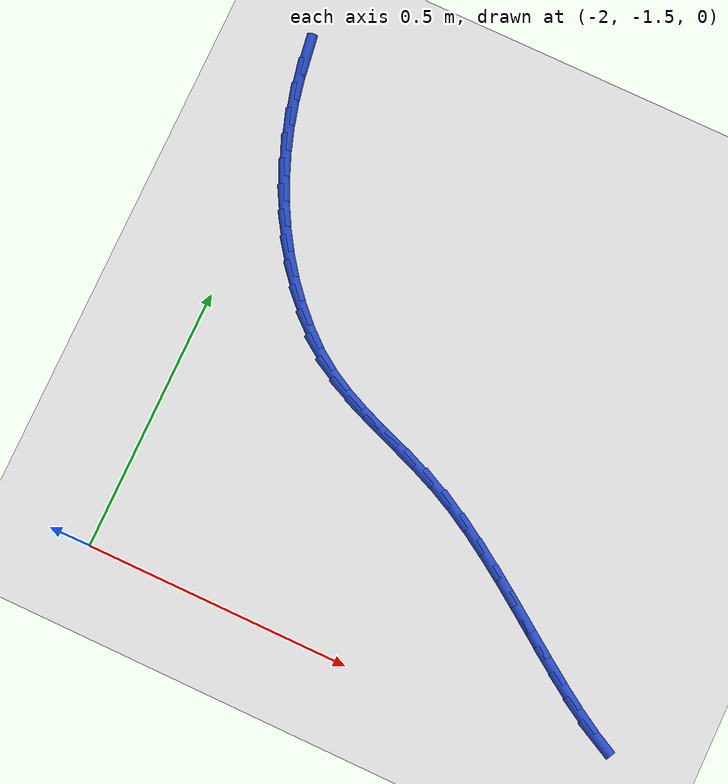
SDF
<sdf version="1.6">
 <world name="default">
  <model name="ground_plane">
   <static>1</static>
   <link name="link">
    <collision name="collision">
     <geometry><plane><normal>0 0 1</normal><size>100 100</size></plane></geometry>
     <surface><friction><ode><mu>100</mu><mu2>50</mu2></ode></friction></surface>
    </collision>
    <visual name="visual">
     <cast_shadows>0</cast_shadows>
     <geometry><plane><normal>0 0 1</normal><size>100 100</size></plane></geometry>
     <material>
      <script><uri>file://media/materials/scripts/gazebo.material</uri><name>Gazebo/WhiteGlow</name></script>
     </material>
    </visual>
   </link>
  </model>
  <model name="line">
   <link name="link_108">
    <pose>-2.0320473844161238 -0.5272043881998019 0.01 0 1.57 -1.4148016725734591</pose>
    <collision name="collision">
     <geometry><cylinder><radius>0.01</radius><length>0.08</length></cylinder></geometry>
    </collision>
    <visual name="visual">
     <material>
      <script><name>Gazebo/Blue</name><uri>file://media/materials/scripts/gazebo.material</uri></script>
     </material>
     <geometry><cylinder><radius>0.01</radius><length>0.08</length></cylinder></geometry>
    </visual>
   </link>
   <link name="link_109">
    <pose>-2.0245989376792797 -0.5745645421240582 0.01 0 1.57 -1.3590406235416126</pose>
    <collision name="collision">
     <geometry><cylinder><radius>0.01</radius><length>0.08</length></cylinder></geometry>
    </collision>
    <visual name="visual">
     <material>
      <script><name>Gazebo/Blue</name><uri>file://media/materials/scripts/gazebo.material</uri></script>
     </material>
     <geometry><cylinder><radius>0.01</radius><length>0.08</length></cylinder></geometry>
    </visual>
   </link>
   <link name="link_110">
    <pose>-2.0145531380390764 -0.6212938433059245 0.01 0 1.57 -1.30254446056776</pose>
    <collision name="collision">
     <geometry><cylinder><radius>0.01</radius><length>0.08</length></cylinder></geometry>
    </collision>
    <visual name="visual">
     <material>
      <script><name>Gazebo/Blue</name><uri>file://media/materials/scripts/gazebo.material</uri></script>
     </material>
     <geometry><cylinder><radius>0.01</radius><length>0.08</length></cylinder></geometry>
    </visual>
   </link>
   <link name="link_111">
    <pose>-2.0019309424091047 -0.667213273032057 0.01 0 1.57 -1.2450292069452633</pose>
    <collision name="collision">
     <geometry><cylinder><radius>0.01</radius><length>0.08</length></cylinder></geometry>
    </collision>
    <visual name="visual">
     <material>
      <script><name>Gazebo/Blue</name><uri>file://media/materials/scripts/gazebo.material</uri></script>
     </material>
     <geometry><cylinder><radius>0.01</radius><length>0.08</length></cylinder></geometry>
    </visual>
   </link>
   <link name="link_112">
    <pose>-1.986753307702952 -0.7121438125891103 0.01 0 1.57 -1.186217703333451</pose>
    <collision name="collision">
     <geometry><cylinder><radius>0.01</radius><length>0.08</length></cylinder></geometry>
    </collision>
    <visual name="visual">
     <material>
      <script><name>Gazebo/Blue</name><uri>file://media/materials/scripts/gazebo.material</uri></script>
     </material>
     <geometry><cylinder><radius>0.01</radius><length>0.08</length></cylinder></geometry>
    </visual>
   </link>
   <link name="link_113">
    <pose>-1.9690411908342096 -0.7559064432637396 0.01 0 1.57 -1.1258451306375261</pose>
    <collision name="collision">
     <geometry><cylinder><radius>0.01</radius><length>0.08</length></cylinder></geometry>
    </collision>
    <visual name="visual">
     <material>
      <script><name>Gazebo/Blue</name><uri>file://media/materials/scripts/gazebo.material</uri></script>
     </material>
     <geometry><cylinder><radius>0.01</radius><length>0.08</length></cylinder></geometry>
    </visual>
   </link>
   <link name="link_114">
    <pose>-1.9488155487164662 -0.7983221463425996 0.01 0 1.57 -1.0636664472669117</pose>
    <collision name="collision">
     <geometry><cylinder><radius>0.01</radius><length>0.08</length></cylinder></geometry>
    </collision>
    <visual name="visual">
     <material>
      <script><name>Gazebo/Blue</name><uri>file://media/materials/scripts/gazebo.material</uri></script>
     </material>
     <geometry><cylinder><radius>0.01</radius><length>0.08</length></cylinder></geometry>
    </visual>
   </link>
   <link name="link_115">
    <pose>-1.926097338263311 -0.8392119031123457 0.01 0 1.57 -0.9994660951344264</pose>
    <collision name="collision">
     <geometry><cylinder><radius>0.01</radius><length>0.08</length></cylinder></geometry>
    </collision>
    <visual name="visual">
     <material>
      <script><name>Gazebo/Blue</name><uri>file://media/materials/scripts/gazebo.material</uri></script>
     </material>
     <geometry><cylinder><radius>0.01</radius><length>0.08</length></cylinder></geometry>
    </visual>
   </link>
   <link name="link_116">
    <pose>-1.9009075163883342 -0.8783966948596316 0.01 0 1.57 -0.9330701476995497</pose>
    <collision name="collision">
     <geometry><cylinder><radius>0.01</radius><length>0.08</length></cylinder></geometry>
    </collision>
    <visual name="visual">
     <material>
      <script><name>Gazebo/Blue</name><uri>file://media/materials/scripts/gazebo.material</uri></script>
     </material>
     <geometry><cylinder><radius>0.01</radius><length>0.08</length></cylinder></geometry>
    </visual>
   </link>
   <link name="link_117">
    <pose>-1.8732670400051255 -0.9156975028711128 0.01 0 1.57 -0.8643607486426573</pose>
    <collision name="collision">
     <geometry><cylinder><radius>0.01</radius><length>0.08</length></cylinder></geometry>
    </collision>
    <visual name="visual">
     <material>
      <script><name>Gazebo/Blue</name><uri>file://media/materials/scripts/gazebo.material</uri></script>
     </material>
     <geometry><cylinder><radius>0.01</radius><length>0.08</length></cylinder></geometry>
    </visual>
   </link>
   <link name="link_118">
    <pose>-1.8431968660272737 -0.9509353084334444 0.01 0 1.57 -0.7932864955578052</pose>
    <collision name="collision">
     <geometry><cylinder><radius>0.01</radius><length>0.08</length></cylinder></geometry>
    </collision>
    <visual name="visual">
     <material>
      <script><name>Gazebo/Blue</name><uri>file://media/materials/scripts/gazebo.material</uri></script>
     </material>
     <geometry><cylinder><radius>0.01</radius><length>0.08</length></cylinder></geometry>
    </visual>
   </link>
   <link name="link_119">
    <pose>-1.8107179649590586 -0.9839307032083554 0.01 0 1.57 -0.7117509588186234</pose>
    <collision name="collision">
     <geometry><cylinder><radius>0.01</radius><length>0.08</length></cylinder></geometry>
    </collision>
    <visual name="visual">
     <material>
      <script><name>Gazebo/Blue</name><uri>file://media/materials/scripts/gazebo.material</uri></script>
     </material>
     <geometry><cylinder><radius>0.01</radius><length>0.08</length></cylinder></geometry>
    </visual>
   </link>
   <link name="link_120">
    <pose>-1.7758692304756534 -1.0139904481459048 0.01 0 1.57 -0.5998955415648786</pose>
    <collision name="collision">
     <geometry><cylinder><radius>0.01</radius><length>0.08</length></cylinder></geometry>
    </collision>
    <visual name="visual">
     <material>
      <script><name>Gazebo/Blue</name><uri>file://media/materials/scripts/gazebo.material</uri></script>
     </material>
     <geometry><cylinder><radius>0.01</radius><length>0.08</length></cylinder></geometry>
    </visual>
   </link>
   <link name="link_121">
    <pose>-1.7387667795810124 -1.0393679112471579 0.01 0 1.57 -0.49585735521581153</pose>
    <collision name="collision">
     <geometry><cylinder><radius>0.01</radius><length>0.08</length></cylinder></geometry>
    </collision>
    <visual name="visual">
     <material>
      <script><name>Gazebo/Blue</name><uri>file://media/materials/scripts/gazebo.material</uri></script>
     </material>
     <geometry><cylinder><radius>0.01</radius><length>0.08</length></cylinder></geometry>
    </visual>
   </link>
   <link name="link_122">
    <pose>-1.6996628848320667 -1.0605206001286873 0.01 0 1.57 -0.41948916724950225</pose>
    <collision name="collision">
     <geometry><cylinder><radius>0.01</radius><length>0.08</length></cylinder></geometry>
    </collision>
    <visual name="visual">
     <material>
      <script><name>Gazebo/Blue</name><uri>file://media/materials/scripts/gazebo.material</uri></script>
     </material>
     <geometry><cylinder><radius>0.01</radius><length>0.08</length></cylinder></geometry>
    </visual>
   </link>
   <link name="link_123">
    <pose>-1.6588512284335317 -1.0787209655737868 0.01 0 1.57 -0.3729438241864534</pose>
    <collision name="collision">
     <geometry><cylinder><radius>0.01</radius><length>0.08</length></cylinder></geometry>
    </collision>
    <visual name="visual">
     <material>
      <script><name>Gazebo/Blue</name><uri>file://media/materials/scripts/gazebo.material</uri></script>
     </material>
     <geometry><cylinder><radius>0.01</radius><length>0.08</length></cylinder></geometry>
    </visual>
   </link>
   <link name="link_124">
    <pose>-1.6166255166961279 -1.0952419327726475 0.01 0 1.57 -0.35593039656144665</pose>
    <collision name="collision">
     <geometry><cylinder><radius>0.01</radius><length>0.08</length></cylinder></geometry>
    </collision>
    <visual name="visual">
     <material>
      <script><name>Gazebo/Blue</name><uri>file://media/materials/scripts/gazebo.material</uri></script>
     </material>
     <geometry><cylinder><radius>0.01</radius><length>0.08</length></cylinder></geometry>
    </visual>
   </link>
   <link name="link_125">
    <pose>-1.5732794559305738 -1.1113564269154583 0.01 0 1.57 -0.3670051076795554</pose>
    <collision name="collision">
     <geometry><cylinder><radius>0.01</radius><length>0.08</length></cylinder></geometry>
    </collision>
    <visual name="visual">
     <material>
      <script><name>Gazebo/Blue</name><uri>file://media/materials/scripts/gazebo.material</uri></script>
     </material>
     <geometry><cylinder><radius>0.01</radius><length>0.08</length></cylinder></geometry>
    </visual>
   </link>
   <link name="link_126">
    <pose>-1.5291067524475892 -1.1283373731924105 0.01 0 1.57 -0.40415007935570635</pose>
    <collision name="collision">
     <geometry><cylinder><radius>0.01</radius><length>0.08</length></cylinder></geometry>
    </collision>
    <visual name="visual">
     <material>
      <script><name>Gazebo/Blue</name><uri>file://media/materials/scripts/gazebo.material</uri></script>
     </material>
     <geometry><cylinder><radius>0.01</radius><length>0.08</length></cylinder></geometry>
    </visual>
   </link>
   <link name="link_127">
    <pose>-1.484401112557895 -1.147457696793693 0.01 0 1.57 -0.46288780251705286</pose>
    <collision name="collision">
     <geometry><cylinder><radius>0.01</radius><length>0.08</length></cylinder></geometry>
    </collision>
    <visual name="visual">
     <material>
      <script><name>Gazebo/Blue</name><uri>file://media/materials/scripts/gazebo.material</uri></script>
     </material>
     <geometry><cylinder><radius>0.01</radius><length>0.08</length></cylinder></geometry>
    </visual>
   </link>
   <link name="link_128">
    <pose>-1.4394484603488318 -1.1698913449577368 0.01 0 1.57 -0.5195887782675387</pose>
    <collision name="collision">
     <geometry><cylinder><radius>0.01</radius><length>0.08</length></cylinder></geometry>
    </collision>
    <visual name="visual">
     <material>
      <script><name>Gazebo/Blue</name><uri>file://media/materials/scripts/gazebo.material</uri></script>
     </material>
     <geometry><cylinder><radius>0.01</radius><length>0.08</length></cylinder></geometry>
    </visual>
   </link>
   <link name="link_129">
    <pose>-1.394442206710626 -1.195635638872023 0.01 0 1.57 -0.5618126804195066</pose>
    <collision name="collision">
     <geometry><cylinder><radius>0.01</radius><length>0.08</length></cylinder></geometry>
    </collision>
    <visual name="visual">
     <material>
      <script><name>Gazebo/Blue</name><uri>file://media/materials/scripts/gazebo.material</uri></script>
     </material>
     <geometry><cylinder><radius>0.01</radius><length>0.08</length></cylinder></geometry>
    </visual>
   </link>
   <link name="link_130">
    <pose>-1.3495150910556815 -1.223916251531318 0.01 0 1.57 -0.5913748457961958</pose>
    <collision name="collision">
     <geometry><cylinder><radius>0.01</radius><length>0.08</length></cylinder></geometry>
    </collision>
    <visual name="visual">
     <material>
      <script><name>Gazebo/Blue</name><uri>file://media/materials/scripts/gazebo.material</uri></script>
     </material>
     <geometry><cylinder><radius>0.01</radius><length>0.08</length></cylinder></geometry>
    </visual>
   </link>
   <link name="link_131">
    <pose>-1.3047987963905652 -1.253945420067545 0.01 0 1.57 -0.6096408212580253</pose>
    <collision name="collision">
     <geometry><cylinder><radius>0.01</radius><length>0.08</length></cylinder></geometry>
    </collision>
    <visual name="visual">
     <material>
      <script><name>Gazebo/Blue</name><uri>file://media/materials/scripts/gazebo.material</uri></script>
     </material>
     <geometry><cylinder><radius>0.01</radius><length>0.08</length></cylinder></geometry>
    </visual>
   </link>
   <link name="link_132">
    <pose>-1.2604250057218453 -1.2849353816126259 0.01 0 1.57 -0.6173191535708096</pose>
    <collision name="collision">
     <geometry><cylinder><radius>0.01</radius><length>0.08</length></cylinder></geometry>
    </collision>
    <visual name="visual">
     <material>
      <script><name>Gazebo/Blue</name><uri>file://media/materials/scripts/gazebo.material</uri></script>
     </material>
     <geometry><cylinder><radius>0.01</radius><length>0.08</length></cylinder></geometry>
    </visual>
   </link>
   <link name="link_133">
    <pose>-1.2165254020560896 -1.3160983732984837 0.01 0 1.57 -0.6144775658708016</pose>
    <collision name="collision">
     <geometry><cylinder><radius>0.01</radius><length>0.08</length></cylinder></geometry>
    </collision>
    <visual name="visual">
     <material>
      <script><name>Gazebo/Blue</name><uri>file://media/materials/scripts/gazebo.material</uri></script>
     </material>
     <geometry><cylinder><radius>0.01</radius><length>0.08</length></cylinder></geometry>
    </visual>
   </link>
   <link name="link_134">
    <pose>-1.1732316683998643 -1.3466466322570412 0.01 0 1.57 -0.6005042535143074</pose>
    <collision name="collision">
     <geometry><cylinder><radius>0.01</radius><length>0.08</length></cylinder></geometry>
    </collision>
    <visual name="visual">
     <material>
      <script><name>Gazebo/Blue</name><uri>file://media/materials/scripts/gazebo.material</uri></script>
     </material>
     <geometry><cylinder><radius>0.01</radius><length>0.08</length></cylinder></geometry>
    </visual>
   </link>
   <link name="link_135">
    <pose>-1.130675487759737 -1.3757923956202214 0.01 0 1.57 -0.5739936373470216</pose>
    <collision name="collision">
     <geometry><cylinder><radius>0.01</radius><length>0.08</length></cylinder></geometry>
    </collision>
    <visual name="visual">
     <material>
      <script><name>Gazebo/Blue</name><uri>file://media/materials/scripts/gazebo.material</uri></script>
     </material>
     <geometry><cylinder><radius>0.01</radius><length>0.08</length></cylinder></geometry>
    </visual>
   </link>
   <link name="link_136">
    <pose>-1.0889885431422754 -1.402747900519947 0.01 0 1.57 -0.5325367517349222</pose>
    <collision name="collision">
     <geometry><cylinder><radius>0.01</radius><length>0.08</length></cylinder></geometry>
    </collision>
    <visual name="visual">
     <material>
      <script><name>Gazebo/Blue</name><uri>file://media/materials/scripts/gazebo.material</uri></script>
     </material>
     <geometry><cylinder><radius>0.01</radius><length>0.08</length></cylinder></geometry>
    </visual>
   </link>
   <link name="link_137">
    <pose>-1.0483025175540455 -1.4267253840881415 0.01 0 1.57 -0.47240682836329406</pose>
    <collision name="collision">
     <geometry><cylinder><radius>0.01</radius><length>0.08</length></cylinder></geometry>
    </collision>
    <visual name="visual">
     <material>
      <script><name>Gazebo/Blue</name><uri>file://media/materials/scripts/gazebo.material</uri></script>
     </material>
     <geometry><cylinder><radius>0.01</radius><length>0.08</length></cylinder></geometry>
    </visual>
   </link>
  </model>
 </world>
</sdf>
